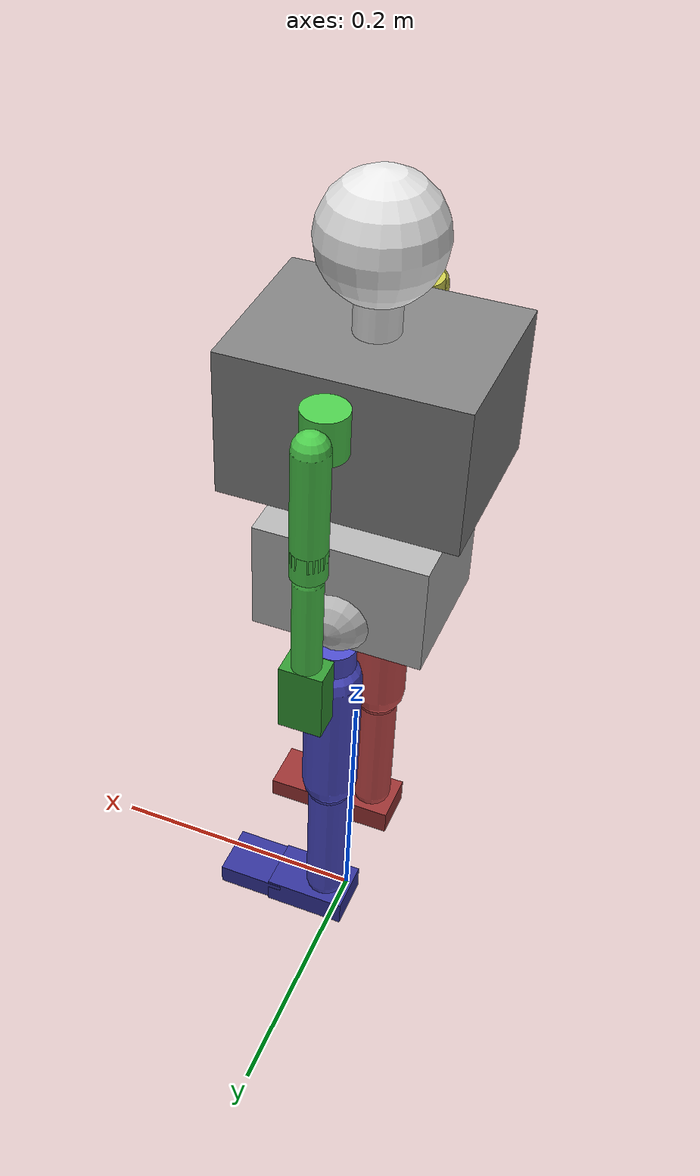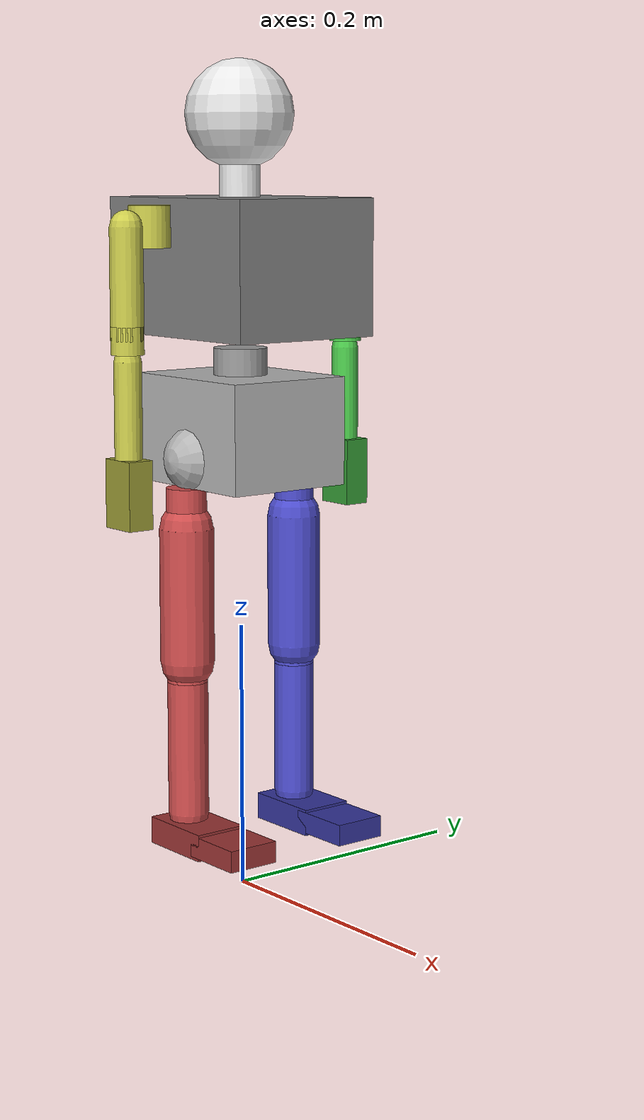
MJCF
<mujoco model="figurobot_2nd">
  <compiler angle="radian" meshdir="meshes/"/>

  <option timestep="0.002" iterations="50" solver="Newton" gravity="0 0 -9.81"/>

  <!-- 电机类型定义 (根据 default.yml) -->
  <default>
    <default class="XC330">
      <joint damping="0.1" armature="0.0001" frictionloss="0.1"/>
      <position kp="14.0" kv="0.1" forcerange="-2.3 2.3"/>
    </default>
    <default class="XM430">
      <joint damping="0.15" armature="0.00015" frictionloss="0.15"/>
      <position kp="20.0" kv="0.15" forcerange="-4.1 4.1"/>
    </default>
    <default class="2XC430">
      <joint damping="0.2" armature="0.0002" frictionloss="0.2"/>
      <position kp="28.0" kv="0.2" forcerange="-4.6 4.6"/>
    </default>
  </default>

  <worldbody>
    <!-- ========== 根节点：腰部+骨盆 ========== -->
    <body name="waist_pelvis" pos="0 0 0.35">
      <freejoint name="root"/>
      <inertial pos="0 0 0" mass="0.2" diaginertia="0.001 0.001 0.0005"/>
      <geom name="waist_geom" type="box" size="0.06 0.05 0.04" rgba="0.7 0.7 0.7 1"/>
      <geom name="pelvis_geom" type="capsule" fromto="0 0.04 -0.02 0 -0.04 -0.02" size="0.025" rgba="0.7 0.7 0.7 1"/>

      <!-- IMU 传感器 - 直接在根节点，无需变换 -->
      <site name="imu" pos="0 0 0.01" quat="1 0 0 0"/>

      <!-- ==================== 左腿 (6-DOF) ==================== -->
      <!-- 大腿根：承载roll电机，被pitch电机驱动 -->
      <body name="left_thigh_root" pos="0 0.05 -0.05">
        <!-- pitch关节：大腿根相对骨盆的前后摆动，电机在骨盆里 -->
        <joint name="left_hip_pitch" type="hinge" axis="0 1 0" range="-90 90" class="2XC430"/>
        <!-- 大腿根质量：外壳 + roll电机 -->
        <inertial pos="0 0 0" mass="0.01" diaginertia="0.00001 0.00001 0.00001"/>
        <geom name="left_hip_pitch_geom" type="cylinder" size="0.015 0.01" rgba="0.3 0.3 0.8 1"/>

        <!-- 大腿：承载yaw电机，被roll电机驱动 -->
        <body name="left_thigh" pos="0 0 -0.02">
          <!-- roll关节：大腿相对大腿根的左右摆动（外展/内收），电机在大腿根里 -->
          <joint name="left_hip_roll" type="hinge" axis="1 0 0" range="-30 80" class="2XC430"/>
          <!-- 大腿质量：大腿本体 + yaw电机 -->
          <inertial pos="0 0 -0.05" mass="0.08" diaginertia="0.0002 0.0002 0.00005"/>
          <geom name="left_thigh_geom" type="capsule" fromto="0 0 0 0 0 -0.1" size="0.02" rgba="0.3 0.3 0.8 1"/>

          <!-- 膝盖：承载knee_pitch电机，被yaw电机驱动 -->
          <body name="left_knee" pos="0 0 -0.1">
            <!-- yaw关节：膝盖相对大腿的旋转，电机在大腿里 -->
            <joint name="left_hip_yaw" type="hinge" axis="0 0 1" range="-20 20" class="XC330"/>
            <!-- 膝盖质量：膝盖外壳 + knee_pitch电机 -->
            <inertial pos="0 0 -0.005" mass="0.02" diaginertia="0.00001 0.00001 0.00001"/>
            <geom name="left_knee_geom" type="cylinder" size="0.015 0.015" rgba="0.3 0.3 0.8 1"/>

            <!-- 小腿：承载ankle_pitch电机，被knee_pitch电机驱动 -->
            <body name="left_shank" pos="0 0 -0.015">
              <!-- knee_pitch关节：小腿相对膝盖的弯曲，电机在膝盖里 -->
              <joint name="left_knee_pitch" type="hinge" axis="0 1 0" range="-120 0" class="2XC430"/>
              <!-- 小腿质量：小腿本体 + ankle_pitch电机 -->
              <inertial pos="0 0 -0.05" mass="0.07" diaginertia="0.0002 0.0002 0.00005"/>
              <geom name="left_shank_geom" type="capsule" fromto="0 0 0 0 0 -0.1" size="0.015" rgba="0.3 0.3 0.8 1"/>

              <!-- 脚：承载toe_roll电机，被ankle_pitch电机驱动 -->
              <body name="left_foot" pos="0 0 -0.1">
                <!-- ankle_pitch关节：脚相对小腿的上下翘，电机在小腿里 -->
                <joint name="left_ankle_pitch" type="hinge" axis="0 1 0" range="-45 45" class="XM430"/>
                <!-- 脚质量：脚后跟 + 脚掌 + toe_roll电机 -->
                <inertial pos="0.02 0 -0.015" mass="0.06" diaginertia="0.0001 0.0002 0.0001"/>
                <geom name="left_foot_geom" type="box" size="0.03 0.02 0.01" pos="0.01 0 -0.015" rgba="0.2 0.2 0.6 1"/>

                <!-- 脚前掌：被toe_roll电机驱动 -->
                <body name="left_forefoot" pos="0.04 0 -0.015">
                  <!-- toe_roll关节：脚前掌相对脚的左右倾斜，电机在脚里 -->
                  <joint name="left_toe_roll" type="hinge" axis="1 0 0" range="-30 30" class="XC330"/>
                  <!-- 脚前掌质量：脚趾部分 -->
                  <inertial pos="0.015 0 0" mass="0.07" diaginertia="0.00005 0.0001 0.00005"/>
                  <geom name="left_forefoot_geom" type="box" size="0.025 0.02 0.008" pos="0.015 0 0" rgba="0.2 0.2 0.6 1"/>
                </body>
              </body>
            </body>
          </body>
        </body>
      </body>

      <!-- ==================== 右腿 (6-DOF，镜像) ==================== -->
      <!-- 右腿结构与左腿镜像，关节范围相反 -->
      <body name="right_thigh_root" pos="0 -0.05 -0.05">
        <!-- pitch关节：与左腿相同 -->
        <joint name="right_hip_pitch" type="hinge" axis="0 1 0" range="-90 90" class="2XC430"/>
        <inertial pos="0 0 0" mass="0.01" diaginertia="0.00001 0.00001 0.00001"/>
        <geom name="right_hip_pitch_geom" type="cylinder" size="0.015 0.01" rgba="0.8 0.3 0.3 1"/>

        <body name="right_thigh" pos="0 0 -0.02">
          <!-- roll关节：range与左腿相反（-80~30 vs -30~80） -->
          <joint name="right_hip_roll" type="hinge" axis="1 0 0" range="-80 30" class="2XC430"/>
          <inertial pos="0 0 -0.05" mass="0.08" diaginertia="0.0002 0.0002 0.00005"/>
          <geom name="right_thigh_geom" type="capsule" fromto="0 0 0 0 0 -0.1" size="0.02" rgba="0.8 0.3 0.3 1"/>

          <body name="right_knee" pos="0 0 -0.1">
            <joint name="right_hip_yaw" type="hinge" axis="0 0 1" range="-20 20" class="XC330"/>
            <inertial pos="0 0 -0.005" mass="0.02" diaginertia="0.00001 0.00001 0.00001"/>
            <geom name="right_knee_geom" type="cylinder" size="0.015 0.015" rgba="0.8 0.3 0.3 1"/>

            <body name="right_shank" pos="0 0 -0.015">
              <joint name="right_knee_pitch" type="hinge" axis="0 1 0" range="-120 0" class="2XC430"/>
              <inertial pos="0 0 -0.05" mass="0.07" diaginertia="0.0002 0.0002 0.00005"/>
              <geom name="right_shank_geom" type="capsule" fromto="0 0 0 0 0 -0.1" size="0.015" rgba="0.8 0.3 0.3 1"/>

              <body name="right_foot" pos="0 0 -0.1">
                <joint name="right_ankle_pitch" type="hinge" axis="0 1 0" range="-45 45" class="XM430"/>
                <inertial pos="0.02 0 -0.015" mass="0.06" diaginertia="0.0001 0.0002 0.0001"/>
                <geom name="right_foot_geom" type="box" size="0.03 0.02 0.01" pos="0.01 0 -0.015" rgba="0.6 0.2 0.2 1"/>

                <body name="right_forefoot" pos="0.04 0 -0.015">
                  <joint name="right_toe_roll" type="hinge" axis="1 0 0" range="-30 30" class="XC330"/>
                  <inertial pos="0.015 0 0" mass="0.07" diaginertia="0.00005 0.0001 0.00005"/>
                  <geom name="right_forefoot_geom" type="box" size="0.025 0.02 0.008" pos="0.015 0 0" rgba="0.6 0.2 0.2 1"/>
                </body>
              </body>
            </body>
          </body>
        </body>
      </body>

      <!-- ==================== 腰椎→胸部 (3-DOF) ==================== -->
      <!-- 腰椎1：承载roll电机，被yaw电机驱动 -->
      <body name="lumbar1" pos="0 0 0.02">
        <!-- yaw关节：腰椎1相对骨盆的左右转动，电机在骨盆里 -->
        <joint name="waist_yaw" type="hinge" axis="0 0 1" range="-45 45" class="XM430"/>
        <!-- 腰椎1质量：腰椎外壳 + roll电机 -->
        <inertial pos="0 0 0.01" mass="0.02" diaginertia="0.00001 0.00001 0.00001"/>
        <geom name="lumbar1_geom" type="cylinder" size="0.02 0.015" rgba="0.6 0.6 0.6 1"/>

        <!-- 腰椎2：承载pitch电机，被roll电机驱动 -->
        <body name="lumbar2" pos="0 0 0.025">
          <!-- roll关节：腰椎2相对腰椎1的左右侧倾，电机在腰椎1里 -->
          <joint name="waist_roll" type="hinge" axis="1 0 0" range="-30 30" class="XM430"/>
          <!-- 腰椎2质量：腰椎外壳 + pitch电机 -->
          <inertial pos="0 0 0.01" mass="0.02" diaginertia="0.00001 0.00001 0.00001"/>
          <geom name="lumbar2_geom" type="cylinder" size="0.02 0.015" rgba="0.6 0.6 0.6 1"/>

          <!-- 胸部：被pitch电机驱动 -->
          <body name="chest" pos="0 0 0.025">
            <!-- pitch关节：胸部相对腰椎2的前后倾斜，电机在腰椎2里 -->
            <joint name="waist_pitch" type="hinge" axis="0 1 0" range="-45 45" class="XM430"/>
            <!-- 胸部质量：胸腔 + 肩膀电机 + 脖子电机 -->
            <inertial pos="0 0 0.05" mass="0.1" diaginertia="0.0003 0.0003 0.0002"/>
            <geom name="chest_geom" type="box" size="0.08 0.06 0.05" pos="0 0 0.05" rgba="0.5 0.5 0.5 1"/>

            <!-- ==================== 头部 (1-DOF) ==================== -->
            <!-- 脖子+头：被neck_yaw电机驱动 -->
            <body name="neck_head" pos="0 0 0.1">
              <!-- yaw关节：头部相对胸部的左右转动，电机在胸部里 -->
              <joint name="neck_yaw" type="hinge" axis="0 0 1" range="-60 60" class="XC330"/>
              <!-- 脖子+头质量：脖子 + 头部 -->
              <inertial pos="0 0 0.05" mass="0.07" diaginertia="0.0001 0.0001 0.0001"/>
              <geom name="neck_geom" type="cylinder" size="0.015 0.025" rgba="0.9 0.9 0.9 1"/>
              <geom name="head_geom" type="sphere" size="0.04" pos="0 0 0.06" rgba="0.9 0.9 0.9 1"/>
            </body>

            <!-- ==================== 左臂 (5-DOF) ==================== -->
            <!-- 左肩：承载shoulder_roll电机，被shoulder_pitch电机驱动 -->
            <body name="left_shoulder" pos="0 0.08 0.08">
              <!-- shoulder_pitch关节：肩膀相对胸部的前后摆动，电机在胸部里 -->
              <joint name="left_shoulder_pitch" type="hinge" axis="0 1 0" range="-120 120" class="XM430"/>
              <!-- 左肩质量：肩膀外壳 + shoulder_roll电机 -->
              <inertial pos="0 0 0" mass="0.015" diaginertia="0.00001 0.00001 0.00001"/>
              <geom name="left_shoulder_geom" type="cylinder" size="0.015 0.015" rgba="0.3 0.8 0.3 1"/>

              <!-- 左大臂：承载elbow_yaw电机，被shoulder_roll电机驱动 -->
              <body name="left_upper_arm" pos="0 0.02 0">
                <!-- shoulder_roll关节：大臂相对肩膀的展开/内收，电机在肩膀里 -->
                <joint name="left_shoulder_roll" type="hinge" axis="1 0 0" range="-90 180" class="XM430"/>
                <!-- 左大臂质量：大臂本体 + elbow_yaw电机 -->
                <inertial pos="0 0 -0.04" mass="0.03" diaginertia="0.0001 0.0001 0.00002"/>
                <geom name="left_upper_arm_geom" type="capsule" fromto="0 0 0 0 0 -0.08" size="0.012" rgba="0.3 0.8 0.3 1"/>

                <!-- 左肘：承载elbow_roll电机，被elbow_yaw电机驱动 -->
                <body name="left_elbow" pos="0 0 -0.08">
                  <!-- elbow_yaw关节：肘部相对大臂的旋转，电机在大臂里 -->
                  <joint name="left_elbow_yaw" type="hinge" axis="0 0 1" range="-90 90" class="XC330"/>
                  <!-- 左肘质量：肘部外壳 + elbow_roll电机 -->
                  <inertial pos="0 0 -0.005" mass="0.01" diaginertia="0.00001 0.00001 0.00001"/>
                  <geom name="left_elbow_geom" type="cylinder" size="0.012 0.01" rgba="0.3 0.8 0.3 1"/>

                  <!-- 左小臂：承载wrist_roll电机，被elbow_roll电机驱动 -->
                  <body name="left_forearm" pos="0 0 -0.015">
                    <!-- elbow_roll关节：小臂相对肘部的弯曲，电机在肘部里 -->
                    <joint name="left_elbow_roll" type="hinge" axis="1 0 0" range="0 135" class="XC330"/>
                    <!-- 左小臂质量：小臂本体 + wrist_roll电机 -->
                    <inertial pos="0 0 -0.04" mass="0.025" diaginertia="0.0001 0.0001 0.00002"/>
                    <geom name="left_forearm_geom" type="capsule" fromto="0 0 0 0 0 -0.08" size="0.01" rgba="0.3 0.8 0.3 1"/>

                    <!-- 左手：被wrist_roll电机驱动 -->
                    <body name="left_hand" pos="0 0 -0.08">
                      <!-- wrist_roll关节：手相对小臂的旋转，电机在小臂里 -->
                      <joint name="left_wrist_roll" type="hinge" axis="1 0 0" range="-90 90" class="XC330"/>
                      <!-- 左手质量：手掌 + 手指 -->
                      <inertial pos="0 0 -0.015" mass="0.04" diaginertia="0.00005 0.00005 0.00002"/>
                      <geom name="left_hand_geom" type="box" size="0.015 0.01 0.025" pos="0 0 -0.015" rgba="0.2 0.6 0.2 1"/>
                    </body>
                  </body>
                </body>
              </body>
            </body>

            <!-- ==================== 右臂 (5-DOF，镜像) ==================== -->
            <!-- 右臂结构与左臂镜像，部分关节范围相反 -->
            <body name="right_shoulder" pos="0 -0.08 0.08">
              <!-- shoulder_pitch关节：与左臂相同 -->
              <joint name="right_shoulder_pitch" type="hinge" axis="0 1 0" range="-120 120" class="XM430"/>
              <inertial pos="0 0 0" mass="0.015" diaginertia="0.00001 0.00001 0.00001"/>
              <geom name="right_shoulder_geom" type="cylinder" size="0.015 0.015" rgba="0.8 0.8 0.3 1"/>

              <body name="right_upper_arm" pos="0 -0.02 0">
                <!-- shoulder_roll关节：range与左臂相反（-180~90 vs -90~180） -->
                <joint name="right_shoulder_roll" type="hinge" axis="1 0 0" range="-180 90" class="XM430"/>
                <inertial pos="0 0 -0.04" mass="0.03" diaginertia="0.0001 0.0001 0.00002"/>
                <geom name="right_upper_arm_geom" type="capsule" fromto="0 0 0 0 0 -0.08" size="0.012" rgba="0.8 0.8 0.3 1"/>

                <body name="right_elbow" pos="0 0 -0.08">
                  <joint name="right_elbow_yaw" type="hinge" axis="0 0 1" range="-90 90" class="XC330"/>
                  <inertial pos="0 0 -0.005" mass="0.01" diaginertia="0.00001 0.00001 0.00001"/>
                  <geom name="right_elbow_geom" type="cylinder" size="0.012 0.01" rgba="0.8 0.8 0.3 1"/>

                  <body name="right_forearm" pos="0 0 -0.015">
                    <!-- elbow_roll关节：range与左臂相反（-135~0 vs 0~135） -->
                    <joint name="right_elbow_roll" type="hinge" axis="1 0 0" range="-135 0" class="XC330"/>
                    <inertial pos="0 0 -0.04" mass="0.025" diaginertia="0.0001 0.0001 0.00002"/>
                    <geom name="right_forearm_geom" type="capsule" fromto="0 0 0 0 0 -0.08" size="0.01" rgba="0.8 0.8 0.3 1"/>

                    <body name="right_hand" pos="0 0 -0.08">
                      <joint name="right_wrist_roll" type="hinge" axis="1 0 0" range="-90 90" class="XC330"/>
                      <inertial pos="0 0 -0.015" mass="0.04" diaginertia="0.00005 0.00005 0.00002"/>
                      <geom name="right_hand_geom" type="box" size="0.015 0.01 0.025" pos="0 0 -0.015" rgba="0.6 0.6 0.2 1"/>
                    </body>
                  </body>
                </body>
              </body>
            </body>

          </body>
        </body>
      </body>
    </body>
  </worldbody>

  <!-- ==================== 传感器 ==================== -->
  <sensor>
    <accelerometer name="accel" site="imu"/>
    <gyro name="gyro" site="imu"/>
    <magnetometer name="mag" site="imu"/>
    <framepos name="waist_pos" objtype="body" objname="waist_pelvis"/>
    <framequat name="waist_quat" objtype="body" objname="waist_pelvis"/>
    <framelinvel name="waist_linvel" objtype="body" objname="waist_pelvis"/>
    <frameangvel name="waist_angvel" objtype="body" objname="waist_pelvis"/>
  </sensor>

  <!-- ==================== 执行器 ==================== -->
  <actuator>
    <!-- 左腿执行器 -->
    <position name="left_hip_pitch" joint="left_hip_pitch" class="2XC430"/>
    <position name="left_hip_roll" joint="left_hip_roll" class="2XC430"/>
    <position name="left_hip_yaw" joint="left_hip_yaw" class="XC330"/>
    <position name="left_knee_pitch" joint="left_knee_pitch" class="2XC430"/>
    <position name="left_ankle_pitch" joint="left_ankle_pitch" class="XM430"/>
    <position name="left_toe_roll" joint="left_toe_roll" class="XC330"/>

    <!-- 右腿执行器 -->
    <position name="right_hip_pitch" joint="right_hip_pitch" class="2XC430"/>
    <position name="right_hip_roll" joint="right_hip_roll" class="2XC430"/>
    <position name="right_hip_yaw" joint="right_hip_yaw" class="XC330"/>
    <position name="right_knee_pitch" joint="right_knee_pitch" class="2XC430"/>
    <position name="right_ankle_pitch" joint="right_ankle_pitch" class="XM430"/>
    <position name="right_toe_roll" joint="right_toe_roll" class="XC330"/>

    <!-- 腰部执行器 -->
    <position name="waist_yaw" joint="waist_yaw" class="XM430"/>
    <position name="waist_roll" joint="waist_roll" class="XM430"/>
    <position name="waist_pitch" joint="waist_pitch" class="XM430"/>

    <!-- 头部执行器 -->
    <position name="neck_yaw" joint="neck_yaw" class="XC330"/>

    <!-- 左臂执行器 -->
    <position name="left_shoulder_pitch" joint="left_shoulder_pitch" class="XM430"/>
    <position name="left_shoulder_roll" joint="left_shoulder_roll" class="XM430"/>
    <position name="left_elbow_yaw" joint="left_elbow_yaw" class="XC330"/>
    <position name="left_elbow_roll" joint="left_elbow_roll" class="XC330"/>
    <position name="left_wrist_roll" joint="left_wrist_roll" class="XC330"/>

    <!-- 右臂执行器 -->
    <position name="right_shoulder_pitch" joint="right_shoulder_pitch" class="XM430"/>
    <position name="right_shoulder_roll" joint="right_shoulder_roll" class="XM430"/>
    <position name="right_elbow_yaw" joint="right_elbow_yaw" class="XC330"/>
    <position name="right_elbow_roll" joint="right_elbow_roll" class="XC330"/>
    <position name="right_wrist_roll" joint="right_wrist_roll" class="XC330"/>
  </actuator>

</mujoco>
